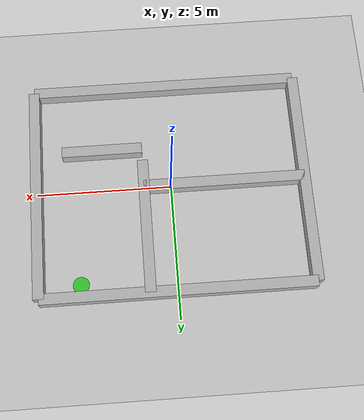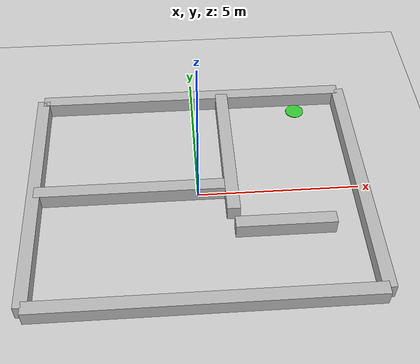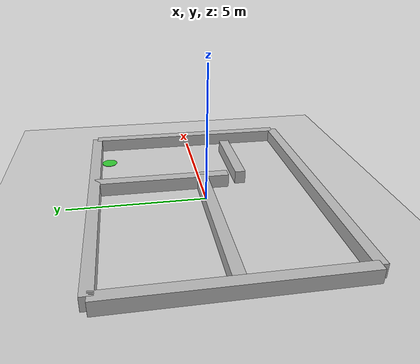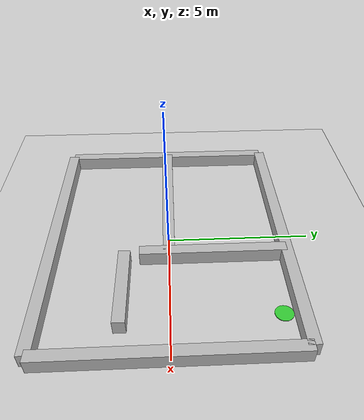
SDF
<?xml version="1.0"?>
<sdf version="1.6">
  <world name="maze1">

    <!-- Required ROS plugin for set_pose -->
    <plugin
      filename="libgz-sim-ros-pose-publisher-system.so"
      name="gz_sim_ros_pose_publisher"/>

    <!-- Basic lighting -->
    <light name="sun" type="directional">
      <pose>0 0 10 0 0 0</pose>
      <cast_shadows>true</cast_shadows>
      <diffuse>0.8 0.8 0.8 1</diffuse>
      <specular>0.2 0.2 0.2 1</specular>
      <direction>-0.5 0.1 -1</direction>
    </light>

    <!-- Ground plane -->
    <model name="ground_plane">
      <static>true</static>
      <link name="link">
        <collision name="collision">
          <geometry>
            <plane>
              <normal>0 0 1</normal>
              <size>200 200</size>
            </plane>
          </geometry>
          <surface>
            <friction>
              <ode>
                <mu>10</mu>
                <mu2>10</mu2>
              </ode>
            </friction>
          </surface>
        </collision>
        <visual name="visual">
          <geometry>
            <plane>
              <normal>0 0 1</normal>
              <size>200 200</size>
            </plane>
          </geometry>
        </visual>
      </link>
    </model>

    <!-- Outer walls -->
    <model name="wall_north">
      <pose>0 4 0.25 0 0 0</pose>
      <static>true</static>
      <link name="link">
        <collision name="collision">
          <geometry>
            <box>
              <size>10 0.4 0.5</size>
            </box>
          </geometry>
        </collision>
        <visual name="visual">
          <geometry>
            <box>
              <size>10 0.4 0.5</size>
            </box>
          </geometry>
        </visual>
      </link>
    </model>

    <model name="wall_south">
      <pose>0 -4 0.25 0 0 0</pose>
      <static>true</static>
      <link name="link">
        <collision name="collision">
          <geometry>
            <box>
              <size>10 0.4 0.5</size>
            </box>
          </geometry>
        </collision>
        <visual name="visual">
          <geometry>
            <box>
              <size>10 0.4 0.5</size>
            </box>
          </geometry>
        </visual>
      </link>
    </model>

    <model name="wall_east">
      <pose>5 0 0.25 0 0 1.5708</pose>
      <static>true</static>
      <link name="link">
        <collision name="collision">
          <geometry>
            <box>
              <size>8 0.4 0.5</size>
            </box>
          </geometry>
        </collision>
        <visual name="visual">
          <geometry>
            <box>
              <size>8 0.4 0.5</size>
            </box>
          </geometry>
        </visual>
      </link>
    </model>

    <model name="wall_west">
      <pose>-5 0 0.25 0 0 1.5708</pose>
      <static>true</static>
      <link name="link">
        <collision name="collision">
          <geometry>
            <box>
              <size>8 0.4 0.5</size>
            </box>
          </geometry>
        </collision>
        <visual name="visual">
          <geometry>
            <box>
              <size>8 0.4 0.5</size>
            </box>
          </geometry>
        </visual>
      </link>
    </model>

    <!-- Internal walls -->
    <model name="wall_inner_1">
      <pose>-2 0 0.25 0 0 0</pose>
      <static>true</static>
      <link name="link">
        <collision name="collision">
          <geometry>
            <box>
              <size>6 0.4 0.5</size>
            </box>
          </geometry>
        </collision>
        <visual name="visual">
          <geometry>
            <box>
              <size>6 0.4 0.5</size>
            </box>
          </geometry>
        </visual>
      </link>
    </model>

    <model name="wall_inner_2">
      <pose>1 1.5 0.25 0 0 1.5708</pose>
      <static>true</static>
      <link name="link">
        <collision name="collision">
          <geometry>
            <box>
              <size>5 0.4 0.5</size>
            </box>
          </geometry>
        </collision>
        <visual name="visual">
          <geometry>
            <box>
              <size>5 0.4 0.5</size>
            </box>
          </geometry>
        </visual>
      </link>
    </model>

    <model name="wall_inner_3">
      <pose>2.5 -1.5 0.25 0 0 0</pose>
      <static>true</static>
      <link name="link">
        <collision name="collision">
          <geometry>
            <box>
              <size>3 0.4 0.5</size>
            </box>
          </geometry>
        </collision>
        <visual name="visual">
          <geometry>
            <box>
              <size>3 0.4 0.5</size>
            </box>
          </geometry>
        </visual>
      </link>
    </model>

    <!-- Goal -->
    <model name="goal">
      <pose>3.5 3.5 0.01 0 0 0</pose>
      <static>true</static>
      <link name="link">
        <visual name="visual">
          <geometry>
            <cylinder>
              <radius>0.3</radius>
              <length>0.02</length>
            </cylinder>
          </geometry>
          <material>
            <ambient>0.2 0.8 0.2 1</ambient>
          </material>
        </visual>
      </link>
    </model>

  </world>
</sdf>
